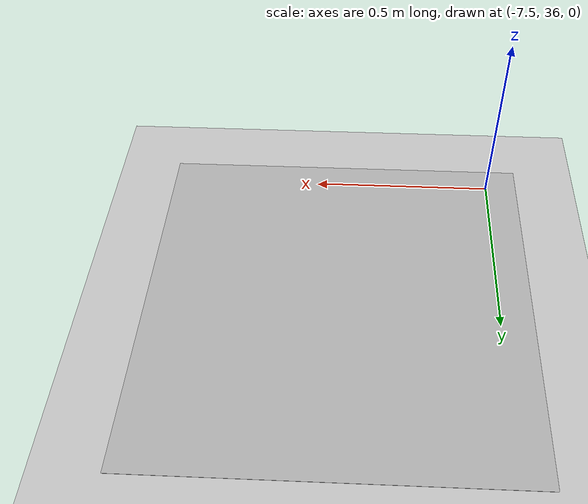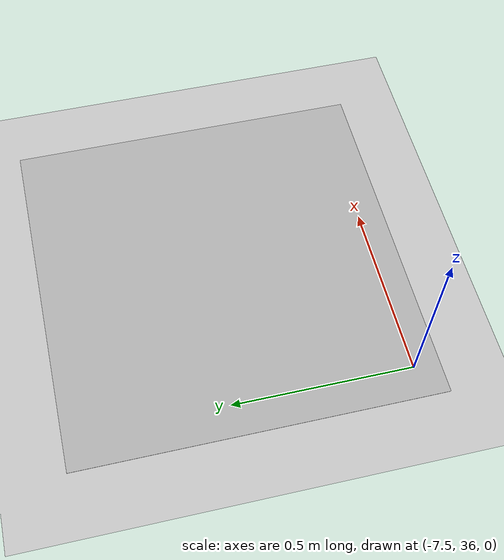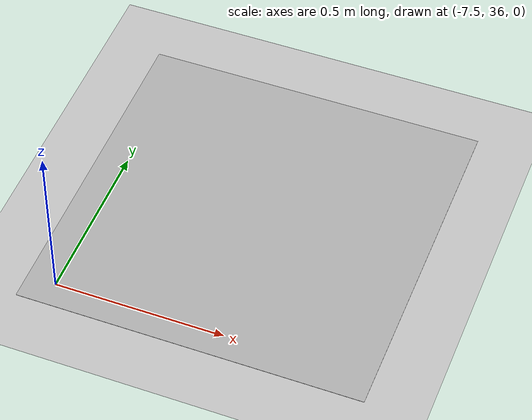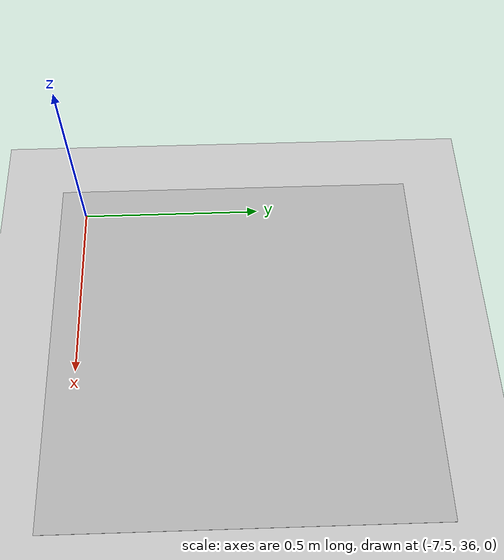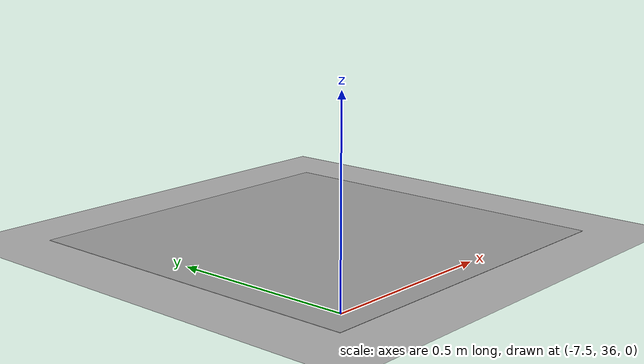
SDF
<sdf version="1.6">
 <world name="default">
  <model name="ground_plane">
   <static>1</static>
   <link name="link">
    <collision name="collision">
     <geometry><plane><normal>0 0 1</normal><size>100 100</size></plane></geometry>
     <surface><friction><ode><mu>100</mu><mu2>50</mu2></ode></friction></surface>
    </collision>
    <visual name="visual">
     <cast_shadows>0</cast_shadows>
     <geometry><plane><normal>0 0 1</normal><size>100 100</size></plane></geometry>
     <material>
      <script><uri>file://media/materials/scripts/gazebo.material</uri><name>Gazebo/Grey</name></script>
     </material>
    </visual>
   </link>
  </model>
  <light name="sun" type="directional">
   <pose>0 0 10 0 -0 0</pose>
   <diffuse>0.8 0.8 0.8 1</diffuse>
   <specular>0.1 0.1 0.1 1</specular>
   <attenuation>
    <range>1000</range>
    <constant>0.9</constant>
    <linear>0.01</linear>
    <quadratic>0.001</quadratic>
   </attenuation>
   <direction>-0.5 0.5 -1</direction>
  </light>
  <plugin name="SetupWorld" filename="libgazebo_plugins.so"/>
  <gravity>0 0 -9.8</gravity>
  <magnetic_field>6e-06 2.3e-05 -4.2e-05</magnetic_field>
  <atmosphere type="adiabatic"/>
  <physics name="default_physics" default="0" type="ode">
   <max_step_size>0.001</max_step_size>
   <real_time_factor>1</real_time_factor>
   <real_time_update_rate>1000</real_time_update_rate>
  </physics>
  <scene><ambient>0.4 0.4 0.4 1</ambient><background>0.7 0.7 0.7 1</background><shadows>1</shadows></scene>
  <spherical_coordinates>
   <surface_model>EARTH_WGS84</surface_model>
   <latitude_deg>0</latitude_deg>
   <longitude_deg>0</longitude_deg>
   <elevation>0</elevation>
   <heading_deg>0</heading_deg>
  </spherical_coordinates>
  <model name="collection_disk">
   <static>1</static>
   <link name="link">
    <visual name="visual">
     <geometry><box><size>1.016 1.016 0.001</size></box></geometry>
     <material>
      <script>
       <uri>model://collection_disk/materials/scripts</uri>
       <uri>model://collection_disk/materials/textures</uri>
       <name>collection_disk/Diffuse</name>
      </script>
     </material>
    </visual>
   </link>
   <plugin name="score_sim" filename="libgazebo_plugins_score.so">
    <scoreTopic>/collectionZone/score</scoreTopic>
    <collectionZoneSquareSize>1.016</collectionZoneSquareSize>
    <updateRate>0.2</updateRate>
   </plugin>
   <pose>-7.07992 36.435 0 0 -0 0</pose>
  </model>
 </world>
</sdf>
